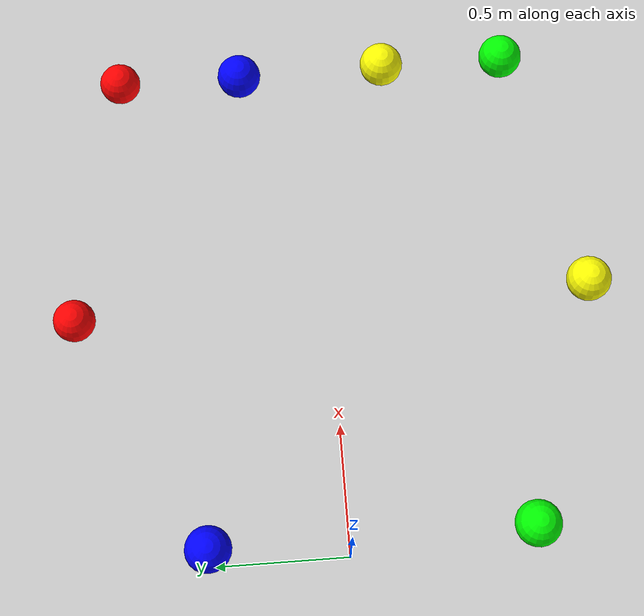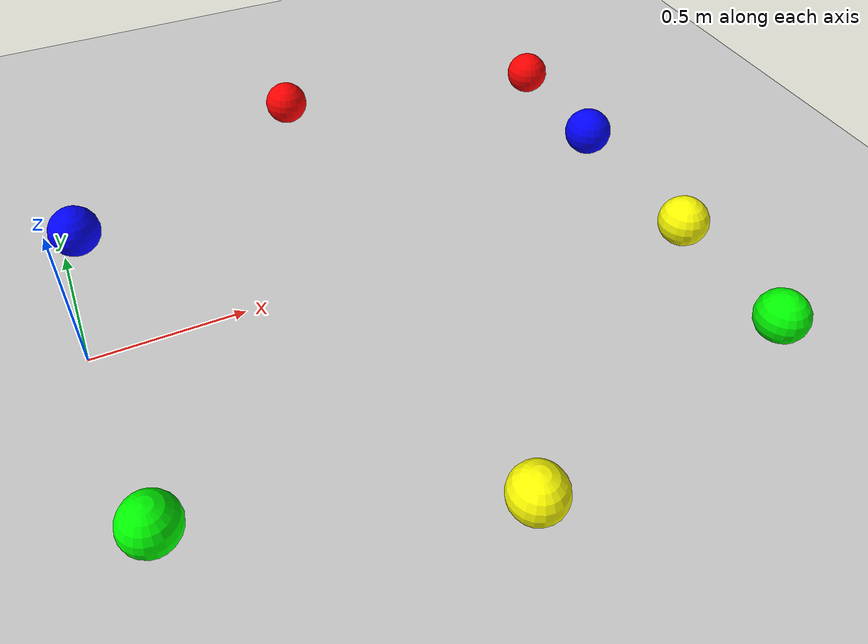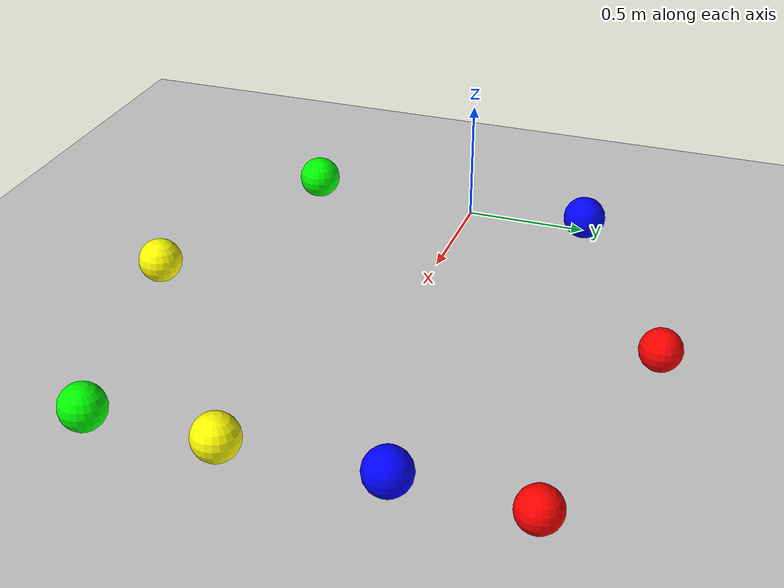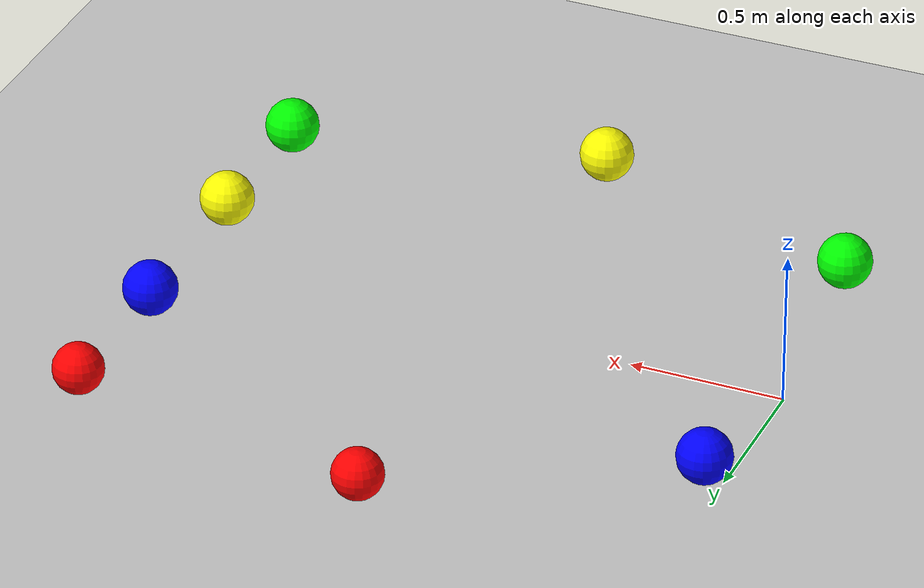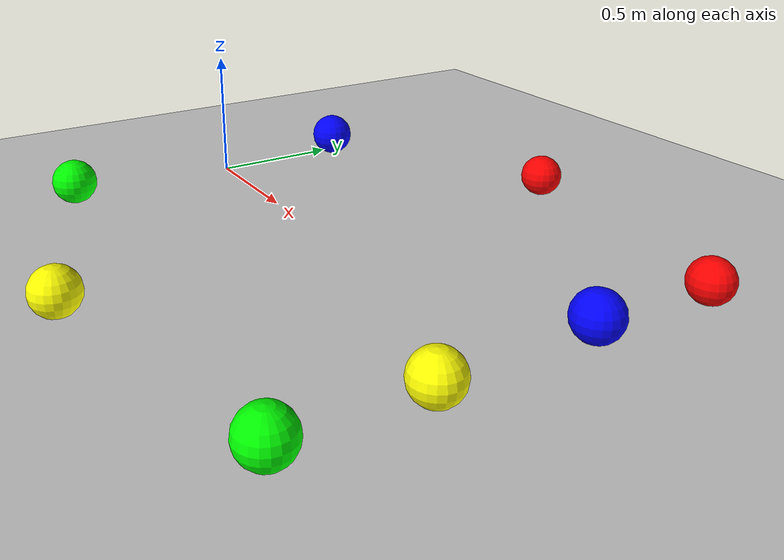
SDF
<sdf version="1.6">
 <world name="default">
  <light name="sun" type="directional">
   <pose>0 0 10 0 -0 0</pose>
   <diffuse>0.8 0.8 0.8 1</diffuse>
   <specular>0.2 0.2 0.2 1</specular>
   <attenuation>
    <range>1000</range>
    <constant>0.9</constant>
    <linear>0.01</linear>
    <quadratic>0.001</quadratic>
   </attenuation>
   <direction>-0.5 0.1 -0.9</direction>
  </light>
  <model name="ground_plane">
   <static>1</static>
   <link name="link">
    <collision name="collision">
     <geometry><plane><normal>0 0 1</normal><size>100 100</size></plane></geometry>
     <surface>
      <contact><collide_bitmask>65535</collide_bitmask></contact>
      <friction><ode><mu>100</mu><mu2>50</mu2></ode></friction>
     </surface>
    </collision>
    <visual name="visual">
     <cast_shadows>0</cast_shadows>
     <geometry><plane><normal>0 0 1</normal><size>100 100</size></plane></geometry>
     <material>
      <script><uri>file://media/materials/scripts/gazebo.material</uri><name>Gazebo/Grey</name></script>
     </material>
    </visual>
   </link>
  </model>
  <gravity>0 0 -9.8</gravity>
  <magnetic_field>6e-06 2.3e-05 -4.2e-05</magnetic_field>
  <atmosphere type="adiabatic"/>
  <physics name="default_physics" default="0" type="ode">
   <max_step_size>0.001</max_step_size>
   <real_time_factor>1</real_time_factor>
   <real_time_update_rate>1000</real_time_update_rate>
  </physics>
  <scene><ambient>0.4 0.4 0.4 1</ambient><background>0.7 0.7 0.7 1</background><shadows>1</shadows></scene>
  <spherical_coordinates>
   <surface_model>EARTH_WGS84</surface_model>
   <latitude_deg>0</latitude_deg>
   <longitude_deg>0</longitude_deg>
   <elevation>0</elevation>
   <heading_deg>0</heading_deg>
  </spherical_coordinates>
  <model name="unit_sphere_red">
   <link name="link">
    <inertial>
     <mass>1</mass>
     <inertia><ixx>0.1</ixx><ixy>0</ixy><ixz>0</ixz><iyy>0.1</iyy><iyz>0</iyz><izz>0.1</izz></inertia>
    </inertial>
    <visual name="visual">
     <geometry><sphere><radius>0.0816395</radius></sphere></geometry>
     <material>
      <script><name>Gazebo/Grey</name><uri>file://media/materials/scripts/gazebo.material</uri></script>
      <shader type="pixel"><normal_map>__default__</normal_map></shader>
      <ambient>1 0 0 0</ambient>
      <diffuse>1 0 0 1</diffuse>
      <specular>1 0 0 1</specular>
      <emissive>0 0 0 1</emissive>
     </material>
    </visual>
    <collision name="collision">
     <geometry><sphere><radius>0.08164</radius></sphere></geometry>
     <surface>
      <friction>
       <ode><mu>1</mu><mu2>1</mu2><fdir1>0 0 0</fdir1><slip1>0</slip1><slip2>0</slip2></ode>
       <torsional>
        <coefficient>1</coefficient>
        <patch_radius>0</patch_radius>
        <surface_radius>0</surface_radius>
        <use_patch_radius>1</use_patch_radius>
        <ode><slip>0</slip></ode>
       </torsional>
      </friction>
      <bounce><restitution_coefficient>0</restitution_coefficient><threshold>1e+06</threshold></bounce>
      <contact>
       <collide_without_contact>0</collide_without_contact>
       <collide_without_contact_bitmask>1</collide_without_contact_bitmask>
       <collide_bitmask>1</collide_bitmask>
       <ode>
        <soft_cfm>0</soft_cfm>
        <soft_erp>0.2</soft_erp>
        <kp>1e+13</kp>
        <kd>1</kd>
        <max_vel>0.01</max_vel>
        <min_depth>0</min_depth>
       </ode>
       <bullet>
        <split_impulse>1</split_impulse>
        <split_impulse_penetration_threshold>-0.01</split_impulse_penetration_threshold>
        <soft_cfm>0</soft_cfm>
        <soft_erp>0.2</soft_erp>
        <kp>1e+13</kp>
        <kd>1</kd>
       </bullet>
      </contact>
     </surface>
    </collision>
   </link>
   <static>0</static>
   <pose>1.98768 0.795919 0.08164 0 -0 0</pose>
  </model>
  <model name="unit_sphere_blue">
   <link name="link">
    <inertial>
     <mass>1</mass>
     <inertia><ixx>0.1</ixx><ixy>0</ixy><ixz>0</ixz><iyy>0.1</iyy><iyz>0</iyz><izz>0.1</izz></inertia>
    </inertial>
    <visual name="visual">
     <geometry><sphere><radius>0.0877375</radius></sphere></geometry>
     <material>
      <script><name>Gazebo/Grey</name><uri>file://media/materials/scripts/gazebo.material</uri></script>
      <shader type="pixel"><normal_map>__default__</normal_map></shader>
      <ambient>0 0 1 1</ambient>
      <diffuse>0 0 1 1</diffuse>
      <specular>0 0 1 1</specular>
      <emissive>0 0 0 1</emissive>
     </material>
    </visual>
    <collision name="collision">
     <geometry><sphere><radius>0.087737</radius></sphere></geometry>
     <surface>
      <friction>
       <ode><mu>1</mu><mu2>1</mu2><fdir1>0 0 0</fdir1><slip1>0</slip1><slip2>0</slip2></ode>
       <torsional>
        <coefficient>1</coefficient>
        <patch_radius>0</patch_radius>
        <surface_radius>0</surface_radius>
        <use_patch_radius>1</use_patch_radius>
        <ode><slip>0</slip></ode>
       </torsional>
      </friction>
      <bounce><restitution_coefficient>0</restitution_coefficient><threshold>1e+06</threshold></bounce>
      <contact>
       <collide_without_contact>0</collide_without_contact>
       <collide_without_contact_bitmask>1</collide_without_contact_bitmask>
       <collide_bitmask>1</collide_bitmask>
       <ode>
        <soft_cfm>0</soft_cfm>
        <soft_erp>0.2</soft_erp>
        <kp>1e+13</kp>
        <kd>1</kd>
        <max_vel>0.01</max_vel>
        <min_depth>0</min_depth>
       </ode>
       <bullet>
        <split_impulse>1</split_impulse>
        <split_impulse_penetration_threshold>-0.01</split_impulse_penetration_threshold>
        <soft_cfm>0</soft_cfm>
        <soft_erp>0.2</soft_erp>
        <kp>1e+13</kp>
        <kd>1</kd>
       </bullet>
      </contact>
     </surface>
    </collision>
   </link>
   <static>0</static>
   <pose>1.98036 0.304848 0.092047 0 -0 0</pose>
  </model>
  <model name="unit_sphere_yellow">
   <link name="link">
    <inertial>
     <mass>1</mass>
     <inertia><ixx>0.1</ixx><ixy>0</ixy><ixz>0</ixz><iyy>0.1</iyy><iyz>0</iyz><izz>0.1</izz></inertia>
    </inertial>
    <visual name="visual">
     <geometry><sphere><radius>0.0877375</radius></sphere></geometry>
     <material>
      <script><name>Gazebo/Grey</name><uri>file://media/materials/scripts/gazebo.material</uri></script>
      <shader type="pixel"><normal_map>__default__</normal_map></shader>
      <ambient>1 1 0 1</ambient>
      <diffuse>1 1 0 1</diffuse>
      <specular>1 1 0 1</specular>
      <emissive>0 0 0 1</emissive>
     </material>
    </visual>
    <collision name="collision">
     <geometry><sphere><radius>0.087737</radius></sphere></geometry>
     <surface>
      <friction>
       <ode><mu>1</mu><mu2>1</mu2><fdir1>0 0 0</fdir1><slip1>0</slip1><slip2>0</slip2></ode>
       <torsional>
        <coefficient>1</coefficient>
        <patch_radius>0</patch_radius>
        <surface_radius>0</surface_radius>
        <use_patch_radius>1</use_patch_radius>
        <ode><slip>0</slip></ode>
       </torsional>
      </friction>
      <bounce><restitution_coefficient>0</restitution_coefficient><threshold>1e+06</threshold></bounce>
      <contact>
       <collide_without_contact>0</collide_without_contact>
       <collide_without_contact_bitmask>1</collide_without_contact_bitmask>
       <collide_bitmask>1</collide_bitmask>
       <ode>
        <soft_cfm>0</soft_cfm>
        <soft_erp>0.2</soft_erp>
        <kp>1e+13</kp>
        <kd>1</kd>
        <max_vel>0.01</max_vel>
        <min_depth>0</min_depth>
       </ode>
       <bullet>
        <split_impulse>1</split_impulse>
        <split_impulse_penetration_threshold>-0.01</split_impulse_penetration_threshold>
        <soft_cfm>0</soft_cfm>
        <soft_erp>0.2</soft_erp>
        <kp>1e+13</kp>
        <kd>1</kd>
       </bullet>
      </contact>
     </surface>
    </collision>
   </link>
   <static>0</static>
   <pose>1.99377 -0.285531 0.088223 0 -0 0</pose>
  </model>
  <model name="unit_sphere_green">
   <link name="link">
    <inertial>
     <mass>1</mass>
     <inertia><ixx>0.1</ixx><ixy>0</ixy><ixz>0</ixz><iyy>0.1</iyy><iyz>0</iyz><izz>0.1</izz></inertia>
    </inertial>
    <visual name="visual">
     <geometry><sphere><radius>0.0877375</radius></sphere></geometry>
     <material>
      <script><name>Gazebo/Grey</name><uri>file://media/materials/scripts/gazebo.material</uri></script>
      <shader type="pixel"><normal_map>__default__</normal_map></shader>
      <ambient>0 1 0 1</ambient>
      <diffuse>0 1 0 1</diffuse>
      <specular>0 1 0 1</specular>
      <emissive>0 0 0 1</emissive>
     </material>
    </visual>
    <collision name="collision">
     <geometry><sphere><radius>0.087737</radius></sphere></geometry>
     <surface>
      <friction>
       <ode><mu>1</mu><mu2>1</mu2><fdir1>0 0 0</fdir1><slip1>0</slip1><slip2>0</slip2></ode>
       <torsional>
        <coefficient>1</coefficient>
        <patch_radius>0</patch_radius>
        <surface_radius>0</surface_radius>
        <use_patch_radius>1</use_patch_radius>
        <ode><slip>0</slip></ode>
       </torsional>
      </friction>
      <bounce><restitution_coefficient>0</restitution_coefficient><threshold>1e+06</threshold></bounce>
      <contact>
       <collide_without_contact>0</collide_without_contact>
       <collide_without_contact_bitmask>1</collide_without_contact_bitmask>
       <collide_bitmask>1</collide_bitmask>
       <ode>
        <soft_cfm>0</soft_cfm>
        <soft_erp>0.2</soft_erp>
        <kp>1e+13</kp>
        <kd>1</kd>
        <max_vel>0.01</max_vel>
        <min_depth>0</min_depth>
       </ode>
       <bullet>
        <split_impulse>1</split_impulse>
        <split_impulse_penetration_threshold>-0.01</split_impulse_penetration_threshold>
        <soft_cfm>0</soft_cfm>
        <soft_erp>0.2</soft_erp>
        <kp>1e+13</kp>
        <kd>1</kd>
       </bullet>
      </contact>
     </surface>
    </collision>
   </link>
   <static>0</static>
   <pose>1.99235 -0.781065 0.090136 0 -0 0</pose>
  </model>
  <model name="unit_sphere_red_clone">
   <link name="link">
    <inertial>
     <mass>1</mass>
     <inertia><ixx>0.1</ixx><ixy>0</ixy><ixz>0</ixz><iyy>0.1</iyy><iyz>0</iyz><izz>0.1</izz></inertia>
    </inertial>
    <visual name="visual">
     <geometry><sphere><radius>0.0816395</radius></sphere></geometry>
     <material>
      <script><name>Gazebo/Grey</name><uri>file://media/materials/scripts/gazebo.material</uri></script>
      <shader type="pixel"><normal_map>__default__</normal_map></shader>
      <ambient>1 0 0 0</ambient>
      <diffuse>1 0 0 1</diffuse>
      <specular>1 0 0 1</specular>
      <emissive>0 0 0 1</emissive>
     </material>
    </visual>
    <collision name="collision">
     <geometry><sphere><radius>0.08164</radius></sphere></geometry>
     <surface>
      <friction>
       <ode><mu>1</mu><mu2>1</mu2><fdir1>0 0 0</fdir1><slip1>0</slip1><slip2>0</slip2></ode>
       <torsional>
        <coefficient>1</coefficient>
        <patch_radius>0</patch_radius>
        <surface_radius>0</surface_radius>
        <use_patch_radius>1</use_patch_radius>
        <ode><slip>0</slip></ode>
       </torsional>
      </friction>
      <bounce><restitution_coefficient>0</restitution_coefficient><threshold>1e+06</threshold></bounce>
      <contact>
       <collide_without_contact>0</collide_without_contact>
       <collide_without_contact_bitmask>1</collide_without_contact_bitmask>
       <collide_bitmask>1</collide_bitmask>
       <ode>
        <soft_cfm>0</soft_cfm>
        <soft_erp>0.2</soft_erp>
        <kp>1e+13</kp>
        <kd>1</kd>
        <max_vel>0.01</max_vel>
        <min_depth>0</min_depth>
       </ode>
       <bullet>
        <split_impulse>1</split_impulse>
        <split_impulse_penetration_threshold>-0.01</split_impulse_penetration_threshold>
        <soft_cfm>0</soft_cfm>
        <soft_erp>0.2</soft_erp>
        <kp>1e+13</kp>
        <kd>1</kd>
       </bullet>
      </contact>
     </surface>
    </collision>
   </link>
   <static>0</static>
   <pose>0.970865 0.994836 0.08164 0 -0 0</pose>
  </model>
  <model name="unit_sphere_yellow_clone">
   <link name="link">
    <inertial>
     <mass>1</mass>
     <inertia><ixx>0.1</ixx><ixy>0</ixy><ixz>0</ixz><iyy>0.1</iyy><iyz>0</iyz><izz>0.1</izz></inertia>
    </inertial>
    <visual name="visual">
     <geometry><sphere><radius>0.0877375</radius></sphere></geometry>
     <material>
      <script><name>Gazebo/Grey</name><uri>file://media/materials/scripts/gazebo.material</uri></script>
      <shader type="pixel"><normal_map>__default__</normal_map></shader>
      <ambient>1 1 0 1</ambient>
      <diffuse>1 1 0 1</diffuse>
      <specular>1 1 0 1</specular>
      <emissive>0 0 0 1</emissive>
     </material>
    </visual>
    <collision name="collision">
     <geometry><sphere><radius>0.087737</radius></sphere></geometry>
     <surface>
      <friction>
       <ode><mu>1</mu><mu2>1</mu2><fdir1>0 0 0</fdir1><slip1>0</slip1><slip2>0</slip2></ode>
       <torsional>
        <coefficient>1</coefficient>
        <patch_radius>0</patch_radius>
        <surface_radius>0</surface_radius>
        <use_patch_radius>1</use_patch_radius>
        <ode><slip>0</slip></ode>
       </torsional>
      </friction>
      <bounce><restitution_coefficient>0</restitution_coefficient><threshold>1e+06</threshold></bounce>
      <contact>
       <collide_without_contact>0</collide_without_contact>
       <collide_without_contact_bitmask>1</collide_without_contact_bitmask>
       <collide_bitmask>1</collide_bitmask>
       <ode>
        <soft_cfm>0</soft_cfm>
        <soft_erp>0.2</soft_erp>
        <kp>1e+13</kp>
        <kd>1</kd>
        <max_vel>0.01</max_vel>
        <min_depth>0</min_depth>
       </ode>
       <bullet>
        <split_impulse>1</split_impulse>
        <split_impulse_penetration_threshold>-0.01</split_impulse_penetration_threshold>
        <soft_cfm>0</soft_cfm>
        <soft_erp>0.2</soft_erp>
        <kp>1e+13</kp>
        <kd>1</kd>
       </bullet>
      </contact>
     </surface>
    </collision>
   </link>
   <static>0</static>
   <pose>0.990389 -1.01252 0.088223 0 -0 0</pose>
  </model>
  <model name="unit_sphere_blue_clone">
   <link name="link">
    <inertial>
     <mass>1</mass>
     <inertia><ixx>0.1</ixx><ixy>0</ixy><ixz>0</ixz><iyy>0.1</iyy><iyz>0</iyz><izz>0.1</izz></inertia>
    </inertial>
    <visual name="visual">
     <geometry><sphere><radius>0.0877375</radius></sphere></geometry>
     <material>
      <script><name>Gazebo/Grey</name><uri>file://media/materials/scripts/gazebo.material</uri></script>
      <shader type="pixel"><normal_map>__default__</normal_map></shader>
      <ambient>0 0 1 1</ambient>
      <diffuse>0 0 1 1</diffuse>
      <specular>0 0 1 1</specular>
      <emissive>0 0 0 1</emissive>
     </material>
    </visual>
    <collision name="collision">
     <geometry><sphere><radius>0.087737</radius></sphere></geometry>
     <surface>
      <friction>
       <ode><mu>1</mu><mu2>1</mu2><fdir1>0 0 0</fdir1><slip1>0</slip1><slip2>0</slip2></ode>
       <torsional>
        <coefficient>1</coefficient>
        <patch_radius>0</patch_radius>
        <surface_radius>0</surface_radius>
        <use_patch_radius>1</use_patch_radius>
        <ode><slip>0</slip></ode>
       </torsional>
      </friction>
      <bounce><restitution_coefficient>0</restitution_coefficient><threshold>1e+06</threshold></bounce>
      <contact>
       <collide_without_contact>0</collide_without_contact>
       <collide_without_contact_bitmask>1</collide_without_contact_bitmask>
       <collide_bitmask>1</collide_bitmask>
       <ode>
        <soft_cfm>0</soft_cfm>
        <soft_erp>0.2</soft_erp>
        <kp>1e+13</kp>
        <kd>1</kd>
        <max_vel>0.01</max_vel>
        <min_depth>0</min_depth>
       </ode>
       <bullet>
        <split_impulse>1</split_impulse>
        <split_impulse_penetration_threshold>-0.01</split_impulse_penetration_threshold>
        <soft_cfm>0</soft_cfm>
        <soft_erp>0.2</soft_erp>
        <kp>1e+13</kp>
        <kd>1</kd>
       </bullet>
      </contact>
     </surface>
    </collision>
   </link>
   <static>0</static>
   <pose>0.056656 0.516585 0.092047 0 -0 0</pose>
  </model>
  <model name="unit_sphere_green_clone">
   <link name="link">
    <inertial>
     <mass>1</mass>
     <inertia><ixx>0.1</ixx><ixy>0</ixy><ixz>0</ixz><iyy>0.1</iyy><iyz>0</iyz><izz>0.1</izz></inertia>
    </inertial>
    <visual name="visual">
     <geometry><sphere><radius>0.0877375</radius></sphere></geometry>
     <material>
      <script><name>Gazebo/Grey</name><uri>file://media/materials/scripts/gazebo.material</uri></script>
      <shader type="pixel"><normal_map>__default__</normal_map></shader>
      <ambient>0 1 0 1</ambient>
      <diffuse>0 1 0 1</diffuse>
      <specular>0 1 0 1</specular>
      <emissive>0 0 0 1</emissive>
     </material>
    </visual>
    <collision name="collision">
     <geometry><sphere><radius>0.087737</radius></sphere></geometry>
     <surface>
      <friction>
       <ode><mu>1</mu><mu2>1</mu2><fdir1>0 0 0</fdir1><slip1>0</slip1><slip2>0</slip2></ode>
       <torsional>
        <coefficient>1</coefficient>
        <patch_radius>0</patch_radius>
        <surface_radius>0</surface_radius>
        <use_patch_radius>1</use_patch_radius>
        <ode><slip>0</slip></ode>
       </torsional>
      </friction>
      <bounce><restitution_coefficient>0</restitution_coefficient><threshold>1e+06</threshold></bounce>
      <contact>
       <collide_without_contact>0</collide_without_contact>
       <collide_without_contact_bitmask>1</collide_without_contact_bitmask>
       <collide_bitmask>1</collide_bitmask>
       <ode>
        <soft_cfm>0</soft_cfm>
        <soft_erp>0.2</soft_erp>
        <kp>1e+13</kp>
        <kd>1</kd>
        <max_vel>0.01</max_vel>
        <min_depth>0</min_depth>
       </ode>
       <bullet>
        <split_impulse>1</split_impulse>
        <split_impulse_penetration_threshold>-0.01</split_impulse_penetration_threshold>
        <soft_cfm>0</soft_cfm>
        <soft_erp>0.2</soft_erp>
        <kp>1e+13</kp>
        <kd>1</kd>
       </bullet>
      </contact>
     </surface>
    </collision>
   </link>
   <static>0</static>
   <pose>0.059911 -0.693682 0.090136 0 -0 0</pose>
  </model>
 </world>
</sdf>
